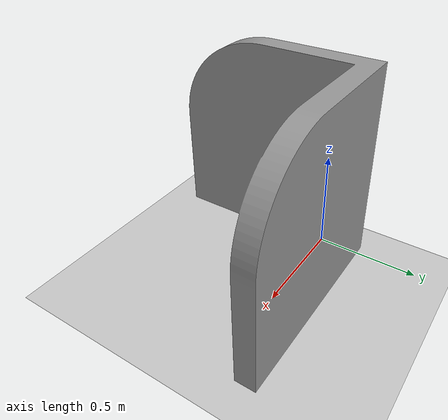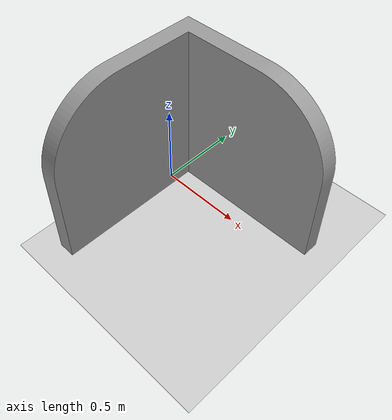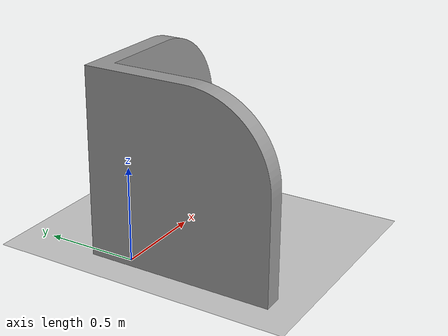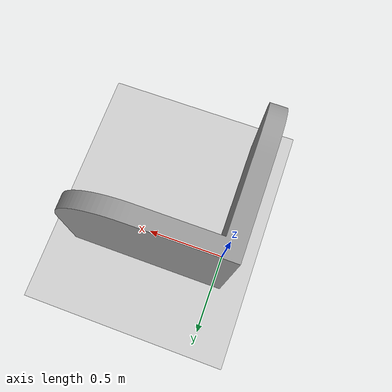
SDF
<?xml version="1.0" ?>
<sdf version="1.8">
  <world name="labirinto">

    <physics name="1ms" type="ignored">
      <max_step_size>0.001</max_step_size>
      <real_time_factor>1.0</real_time_factor>
    </physics>

    <plugin filename="gz-sim-physics-system" name="gz::sim::systems::Physics" />
    <plugin filename="gz-sim-user-commands-system" name="gz::sim::systems::UserCommands" />
    <plugin filename="gz-sim-scene-broadcaster-system" name="gz::sim::systems::SceneBroadcaster" />
    <plugin filename="gz-sim-sensors-system" name="gz::sim::systems::Sensors">
      <render_engine>ogre2</render_engine>
    </plugin>

    <light type="directional" name="sun">
      <cast_shadows>true</cast_shadows>
      <pose>0 0 10 0 0 0</pose>
      <diffuse>0.8 0.8 0.8 1</diffuse>
      <specular>0.2 0.2 0.2 1</specular>
    </light>

    <model name="ground_plane">
      <static>true</static>
      <link name="link">
        <collision name="collision">
          <geometry>
            <plane>
              <normal>0 0 1</normal>
              <size>100 100</size>
            </plane>
          </geometry>
        </collision>
        <visual name="visual">
          <geometry>
            <plane>
              <normal>0 0 1</normal>
              <size>100 100</size>
            </plane>
          </geometry>
          <material>
            <ambient>0.8 0.8 0.8 1</ambient>
            <diffuse>0.8 0.8 0.8 1</diffuse>
          </material>
        </visual>
      </link>
    </model>

    <model name="struttura_indoor">
      <static>true</static> <pose>0 0 0 0 0 0</pose> <link name="link">

        <collision name="collision">
          <geometry>
            <mesh>
              <uri>model://prj_gazebo/meshes/labirinto.obj</uri>
            </mesh>
          </geometry>
        </collision>

        <visual name="visual">
          <geometry>
            <mesh>
              <uri>model://prj_gazebo/meshes/labirinto.obj</uri>
            </mesh>
          </geometry>
          <material>
            <ambient>0.6 0.6 0.6 1</ambient> <diffuse>0.6 0.6 0.6 1</diffuse>
          </material>
        </visual>

      </link>
    </model>

  </world>
</sdf>
